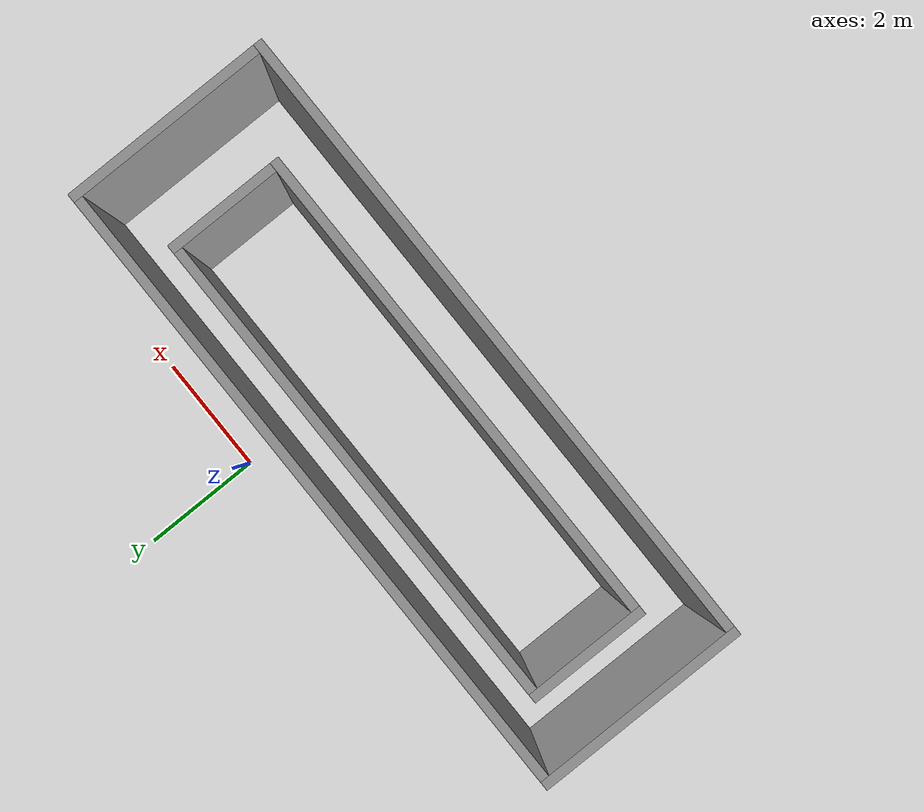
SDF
<?xml version='1.0'?>
<sdf version='1.6'>
  <model name='wuwu'>
    <pose frame=''>-0.95 -2.435 0 0 -0 0</pose>
    <link name='Wall_0'>
      <collision name='Wall_0_Collision'>
        <geometry>
          <box>
            <size>3.5 0.15 2.5</size>
          </box>
        </geometry>
        <pose frame=''>0 0 1.25 0 -0 0</pose>
      </collision>
      <visual name='Wall_0_Visual'>
        <pose frame=''>0 0 1.25 0 -0 0</pose>
        <geometry>
          <box>
            <size>3.5 0.15 2.5</size>
          </box>
        </geometry>
        <material>
          <script>
            <uri>file://media/materials/scripts/gazebo.material</uri>
            <name>Gazebo/Grey</name>
          </script>
          <ambient>1 1 1 1</ambient>
        </material>
        <meta>
          <layer>0</layer>
        </meta>
      </visual>
      <pose frame=''>-5.3 0 0 0 -0 -1.5708</pose>
    </link>
    <link name='Wall_1'>
      <collision name='Wall_1_Collision'>
        <geometry>
          <box>
            <size>10.75 0.15 2.5</size>
          </box>
        </geometry>
        <pose frame=''>0 0 1.25 0 -0 0</pose>
      </collision>
      <visual name='Wall_1_Visual'>
        <pose frame=''>0 0 1.25 0 -0 0</pose>
        <geometry>
          <box>
            <size>10.75 0.15 2.5</size>
          </box>
        </geometry>
        <material>
          <script>
            <uri>file://media/materials/scripts/gazebo.material</uri>
            <name>Gazebo/Grey</name>
          </script>
          <ambient>1 1 1 1</ambient>
        </material>
        <meta>
          <layer>0</layer>
        </meta>
      </visual>
      <pose frame=''>0 -1.675 0 0 -0 0</pose>
    </link>
    <link name='Wall_2'>
      <collision name='Wall_2_Collision'>
        <geometry>
          <box>
            <size>3.5 0.15 2.5</size>
          </box>
        </geometry>
        <pose frame=''>0 0 1.25 0 -0 0</pose>
      </collision>
      <visual name='Wall_2_Visual'>
        <pose frame=''>0 0 1.25 0 -0 0</pose>
        <geometry>
          <box>
            <size>3.5 0.15 2.5</size>
          </box>
        </geometry>
        <material>
          <script>
            <uri>file://media/materials/scripts/gazebo.material</uri>
            <name>Gazebo/Grey</name>
          </script>
          <ambient>1 1 1 1</ambient>
        </material>
        <meta>
          <layer>0</layer>
        </meta>
      </visual>
      <pose frame=''>5.3 0 0 0 -0 1.5708</pose>
    </link>
    <link name='Wall_3'>
      <collision name='Wall_3_Collision'>
        <geometry>
          <box>
            <size>10.75 0.15 2.5</size>
          </box>
        </geometry>
        <pose frame=''>0 0 1.25 0 -0 0</pose>
      </collision>
      <visual name='Wall_3_Visual'>
        <pose frame=''>0 0 1.25 0 -0 0</pose>
        <geometry>
          <box>
            <size>10.75 0.15 2.5</size>
          </box>
        </geometry>
        <material>
          <script>
            <uri>file://media/materials/scripts/gazebo.material</uri>
            <name>Gazebo/Grey</name>
          </script>
          <ambient>1 1 1 1</ambient>
        </material>
        <meta>
          <layer>0</layer>
        </meta>
      </visual>
      <pose frame=''>0 1.675 0 0 -0 3.14159</pose>
    </link>
    <link name='Wall_5'>
      <collision name='Wall_5_Collision'>
        <geometry>
          <box>
            <size>2 0.15 2.5</size>
          </box>
        </geometry>
        <pose frame=''>0 0 1.25 0 -0 0</pose>
      </collision>
      <visual name='Wall_5_Visual'>
        <pose frame=''>0 0 1.25 0 -0 0</pose>
        <geometry>
          <box>
            <size>2 0.15 2.5</size>
          </box>
        </geometry>
        <material>
          <script>
            <uri>file://media/materials/scripts/gazebo.material</uri>
            <name>Gazebo/Grey</name>
          </script>
          <ambient>1 1 1 1</ambient>
        </material>
        <meta>
          <layer>0</layer>
        </meta>
      </visual>
      <pose frame=''>-4.24 0.11 0 0 -0 -1.5708</pose>
    </link>
    <link name='Wall_6'>
      <collision name='Wall_6_Collision'>
        <geometry>
          <box>
            <size>8.25 0.15 2.5</size>
          </box>
        </geometry>
        <pose frame=''>0 0 1.25 0 -0 0</pose>
      </collision>
      <visual name='Wall_6_Visual'>
        <pose frame=''>0 0 1.25 0 -0 0</pose>
        <geometry>
          <box>
            <size>8.25 0.15 2.5</size>
          </box>
        </geometry>
        <material>
          <script>
            <uri>file://media/materials/scripts/gazebo.material</uri>
            <name>Gazebo/Grey</name>
          </script>
          <ambient>1 1 1 1</ambient>
        </material>
        <meta>
          <layer>0</layer>
        </meta>
      </visual>
      <pose frame=''>-0.19 -0.815 0 0 -0 0</pose>
    </link>
    <link name='Wall_7'>
      <collision name='Wall_7_Collision'>
        <geometry>
          <box>
            <size>2 0.15 2.5</size>
          </box>
        </geometry>
        <pose frame=''>0 0 1.25 0 -0 0</pose>
      </collision>
      <visual name='Wall_7_Visual'>
        <pose frame=''>0 0 1.25 0 -0 0</pose>
        <geometry>
          <box>
            <size>2 0.15 2.5</size>
          </box>
        </geometry>
        <material>
          <script>
            <uri>file://media/materials/scripts/gazebo.material</uri>
            <name>Gazebo/Grey</name>
          </script>
          <ambient>1 1 1 1</ambient>
        </material>
        <meta>
          <layer>0</layer>
        </meta>
      </visual>
      <pose frame=''>3.86 0.11 0 0 -0 1.5708</pose>
    </link>
    <link name='Wall_8'>
      <collision name='Wall_8_Collision'>
        <geometry>
          <box>
            <size>8.25 0.15 2.5</size>
          </box>
        </geometry>
        <pose frame=''>0 0 1.25 0 -0 0</pose>
      </collision>
      <visual name='Wall_8_Visual'>
        <pose frame=''>0 0 1.25 0 -0 0</pose>
        <geometry>
          <box>
            <size>8.25 0.15 2.5</size>
          </box>
        </geometry>
        <material>
          <script>
            <uri>file://media/materials/scripts/gazebo.material</uri>
            <name>Gazebo/Grey</name>
          </script>
          <ambient>1 1 1 1</ambient>
        </material>
        <meta>
          <layer>0</layer>
        </meta>
      </visual>
      <pose frame=''>-0.19 1.035 0 0 -0 3.14159</pose>
    </link>
    <static>1</static>
  </model>
</sdf>
